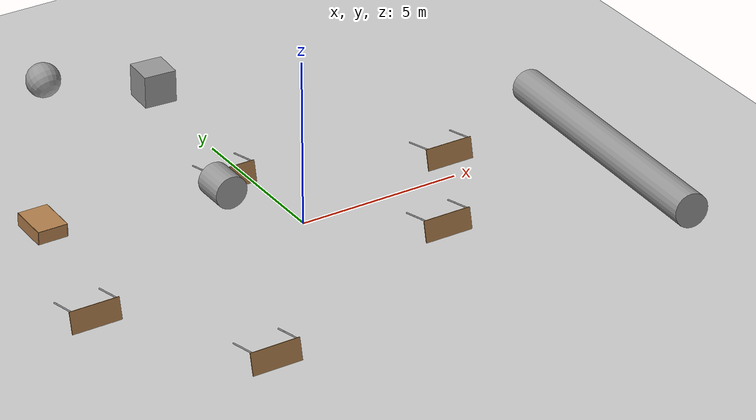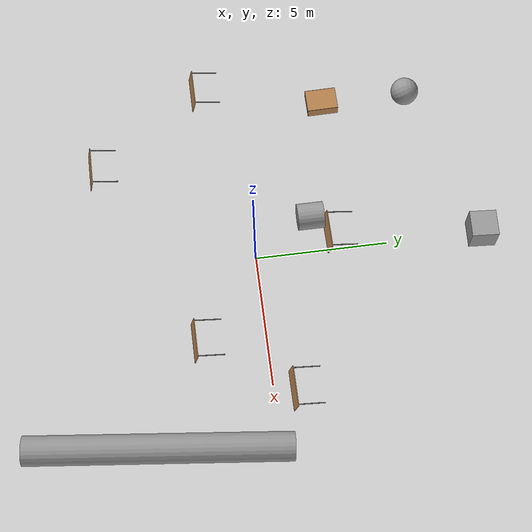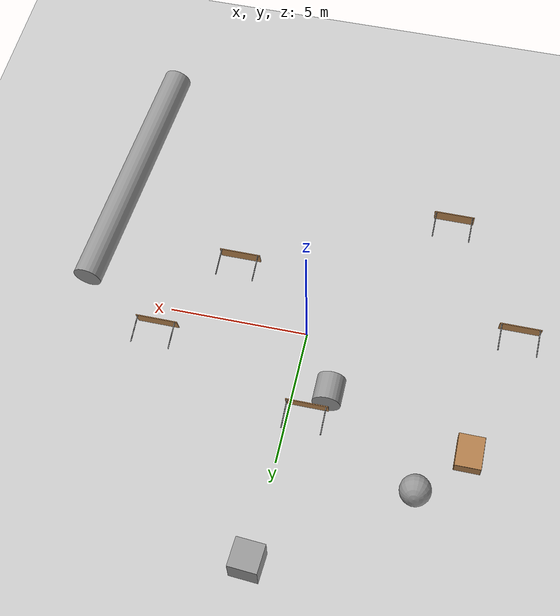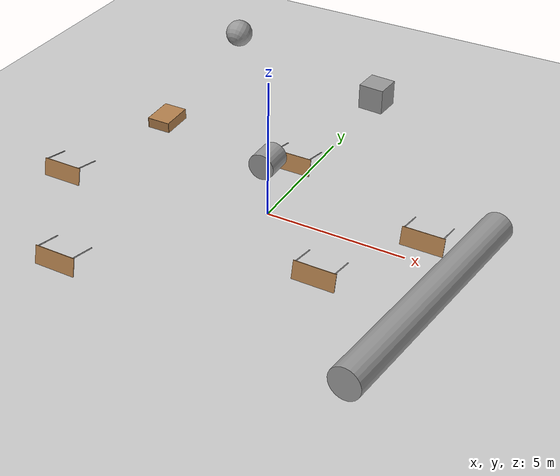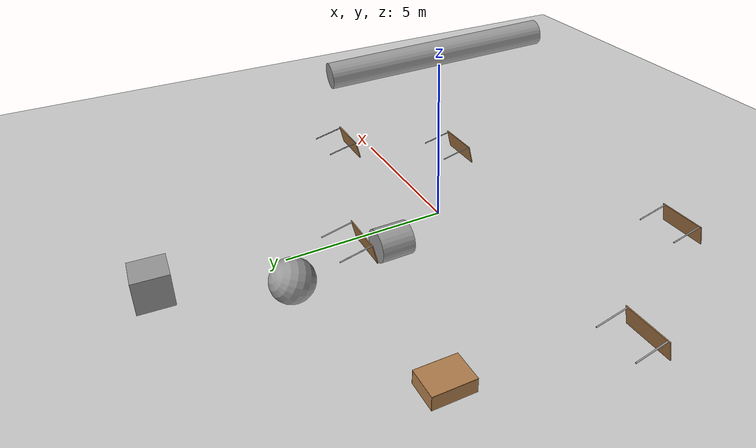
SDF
<sdf version="1.6">
 <world name="default">
  <light name="sun" type="directional">
   <pose>0 0 10 0 -0 0</pose>
   <diffuse>0.8 0.8 0.8 1</diffuse>
   <specular>0.1 0.1 0.1 1</specular>
   <attenuation>
    <range>1000</range>
    <constant>0.9</constant>
    <linear>0.01</linear>
    <quadratic>0.001</quadratic>
   </attenuation>
   <direction>-0.5 0.5 -1</direction>
  </light>
  <model name="ground_plane">
   <static>1</static>
   <link name="link">
    <collision name="collision">
     <geometry><plane><normal>0 0 1</normal><size>100 100</size></plane></geometry>
     <surface><friction><ode><mu>100</mu><mu2>50</mu2></ode></friction></surface>
    </collision>
    <visual name="visual">
     <cast_shadows>0</cast_shadows>
     <geometry><plane><normal>0 0 1</normal><size>100 100</size></plane></geometry>
     <material>
      <script><uri>file://media/materials/scripts/gazebo.material</uri><name>Gazebo/Grey</name></script>
     </material>
    </visual>
   </link>
  </model>
  <gravity>0 0 -9.8</gravity>
  <magnetic_field>6e-06 2.3e-05 -4.2e-05</magnetic_field>
  <atmosphere type="adiabatic"/>
  <physics name="default_physics" default="0" type="ode">
   <max_step_size>0.001</max_step_size>
   <real_time_factor>1</real_time_factor>
   <real_time_update_rate>1000</real_time_update_rate>
  </physics>
  <scene><ambient>0.4 0.4 0.4 1</ambient><background>0.7 0.7 0.7 1</background><shadows>1</shadows></scene>
  <spherical_coordinates>
   <surface_model>EARTH_WGS84</surface_model>
   <latitude_deg>0</latitude_deg>
   <longitude_deg>0</longitude_deg>
   <elevation>0</elevation>
   <heading_deg>0</heading_deg>
  </spherical_coordinates>
  <model name="bookshelf">
   <static>1</static>
   <link name="link">
    <inertial><mass>1</mass></inertial>
    <collision name="back">
     <pose>0 0.005 0.6 0 -0 0</pose>
     <geometry><box><size>0.9 0.01 1.2</size></box></geometry>
    </collision>
    <visual name="visual1">
     <pose>0 0.005 0.6 0 -0 0</pose>
     <geometry><box><size>0.9 0.01 1.2</size></box></geometry>
     <material>
      <script><uri>file://media/materials/scripts/gazebo.material</uri><name>Gazebo/Wood</name></script>
     </material>
    </visual>
    <collision name="left_side">
     <pose>0.45 -0.195 0.6 0 -0 0</pose>
     <geometry><box><size>0.02 0.4 1.2</size></box></geometry>
    </collision>
    <visual name="visual2">
     <pose>0.45 -0.195 0.6 0 -0 0</pose>
     <geometry><box><size>0.02 0.4 1.2</size></box></geometry>
     <material>
      <script><uri>file://media/materials/scripts/gazebo.material</uri><name>Gazebo/Wood</name></script>
     </material>
    </visual>
    <collision name="right_side">
     <pose>-0.45 -0.195 0.6 0 -0 0</pose>
     <geometry><box><size>0.02 0.4 1.2</size></box></geometry>
    </collision>
    <visual name="visual3">
     <pose>-0.45 -0.195 0.6 0 -0 0</pose>
     <geometry><box><size>0.02 0.4 1.2</size></box></geometry>
     <material>
      <script><uri>file://media/materials/scripts/gazebo.material</uri><name>Gazebo/Wood</name></script>
     </material>
    </visual>
    <collision name="bottom">
     <pose>0 -0.195 0.03 0 -0 0</pose>
     <geometry><box><size>0.88 0.4 0.06</size></box></geometry>
    </collision>
    <visual name="visual4">
     <pose>0 -0.195 0.03 0 -0 0</pose>
     <geometry><box><size>0.88 0.4 0.06</size></box></geometry>
     <material>
      <script><uri>file://media/materials/scripts/gazebo.material</uri><name>Gazebo/Wood</name></script>
     </material>
    </visual>
    <collision name="top">
     <pose>0 -0.195 1.19 0 -0 0</pose>
     <geometry><box><size>0.88 0.4 0.02</size></box></geometry>
    </collision>
    <visual name="visual5">
     <pose>0 -0.195 1.19 0 -0 0</pose>
     <geometry><box><size>0.88 0.4 0.02</size></box></geometry>
     <material>
      <script><uri>file://media/materials/scripts/gazebo.material</uri><name>Gazebo/Wood</name></script>
     </material>
    </visual>
    <collision name="low_shelf">
     <pose>0 -0.195 0.43 0 -0 0</pose>
     <geometry><box><size>0.88 0.4 0.02</size></box></geometry>
    </collision>
    <visual name="visual6">
     <pose>0 -0.195 0.43 0 -0 0</pose>
     <geometry><box><size>0.88 0.4 0.02</size></box></geometry>
     <material>
      <script><uri>file://media/materials/scripts/gazebo.material</uri><name>Gazebo/Wood</name></script>
     </material>
    </visual>
    <collision name="high_shelf">
     <pose>0 -0.195 0.8 0 -0 0</pose>
     <geometry><box><size>0.88 0.4 0.02</size></box></geometry>
    </collision>
    <visual name="visual7">
     <pose>0 -0.195 0.8 0 -0 0</pose>
     <geometry><box><size>0.88 0.4 0.02</size></box></geometry>
     <material>
      <script><uri>file://media/materials/scripts/gazebo.material</uri><name>Gazebo/Wood</name></script>
     </material>
    </visual>
   </link>
   <pose>-6.30564 4.00439 0.437463 1.60037 -0 0</pose>
  </model>
  <model name="unit_sphere_0">
   <pose>-4.69653 6.17486 3.02622 -0.995099 0.163163 0.114626</pose>
   <link name="link">
    <inertial>
     <mass>1</mass>
     <inertia><ixx>0.1</ixx><ixy>0</ixy><ixz>0</ixz><iyy>0.1</iyy><iyz>0</iyz><izz>0.1</izz></inertia>
    </inertial>
    <collision name="collision"><geometry><sphere><radius>0.499999</radius></sphere></geometry></collision>
    <visual name="visual">
     <geometry><sphere><radius>0.499999</radius></sphere></geometry>
     <material>
      <script><name>Gazebo/Grey</name><uri>file://media/materials/scripts/gazebo.material</uri></script>
     </material>
    </visual>
   </link>
  </model>
  <model name="unit_cylinder_0">
   <pose>-1.25988 2.23812 0.5 1.5708 -0.6722 -0.002922</pose>
   <link name="link">
    <inertial>
     <mass>1</mass>
     <inertia><ixx>0.145833</ixx><ixy>0</ixy><ixz>0</ixz><iyy>0.145833</iyy><iyz>0</iyz><izz>0.125</izz></inertia>
    </inertial>
    <collision name="collision">
     <geometry><cylinder><radius>0.5</radius><length>1</length></cylinder></geometry>
    </collision>
    <visual name="visual">
     <geometry><cylinder><radius>0.5</radius><length>1</length></cylinder></geometry>
     <material>
      <script><name>Gazebo/Grey</name><uri>file://media/materials/scripts/gazebo.material</uri></script>
     </material>
    </visual>
   </link>
  </model>
  <model name="unit_cylinder_0_clone_0">
   <pose>7.30075 -4.07955 2.20131 1.5117 -0.027325 -0.095147</pose>
   <link name="link">
    <inertial>
     <mass>1</mass>
     <inertia><ixx>0.145833</ixx><ixy>0</ixy><ixz>0</ixz><iyy>0.145833</iyy><iyz>0</iyz><izz>0.125</izz></inertia>
    </inertial>
    <collision name="collision">
     <geometry><cylinder><radius>0.5</radius><length>8.99478</length></cylinder></geometry>
    </collision>
    <visual name="visual">
     <geometry><cylinder><radius>0.5</radius><length>8.99478</length></cylinder></geometry>
     <material>
      <script><name>Gazebo/Grey</name><uri>file://media/materials/scripts/gazebo.material</uri></script>
     </material>
    </visual>
   </link>
  </model>
  <model name="unit_box_0">
   <pose>0.088022 8.58749 0.5 0 -0 -0.066336</pose>
   <link name="link">
    <inertial>
     <mass>1</mass>
     <inertia>
      <ixx>0.166667</ixx>
      <ixy>0</ixy>
      <ixz>0</ixz>
      <iyy>0.166667</iyy>
      <iyz>0</iyz>
      <izz>0.166667</izz>
     </inertia>
    </inertial>
    <collision name="collision"><geometry><box><size>1 1 1</size></box></geometry></collision>
    <visual name="visual">
     <geometry><box><size>1 1 1</size></box></geometry>
     <material>
      <script><name>Gazebo/Grey</name><uri>file://media/materials/scripts/gazebo.material</uri></script>
     </material>
    </visual>
   </link>
  </model>
  <audio><device>default</device></audio>
  <model name="table">
   <static>1</static>
   <link name="link">
    <collision name="surface">
     <pose>0 0 1 0 -0 0</pose>
     <geometry><box><size>1.5 0.8 0.03</size></box></geometry>
     <surface><friction><ode><mu>0.6</mu><mu2>0.6</mu2></ode></friction></surface>
    </collision>
    <visual name="visual1">
     <pose>0 0 1 0 -0 0</pose>
     <geometry><box><size>1.5 0.8 0.03</size></box></geometry>
     <material>
      <script><uri>file://media/materials/scripts/gazebo.material</uri><name>Gazebo/Wood</name></script>
     </material>
    </visual>
    <collision name="front_left_leg">
     <pose>0.68 0.38 0.5 0 -0 0</pose>
     <geometry><cylinder><radius>0.02</radius><length>1</length></cylinder></geometry>
    </collision>
    <visual name="front_left_leg">
     <pose>0.68 0.38 0.5 0 -0 0</pose>
     <geometry><cylinder><radius>0.02</radius><length>1</length></cylinder></geometry>
     <material>
      <script><uri>file://media/materials/scripts/gazebo.material</uri><name>Gazebo/Grey</name></script>
     </material>
    </visual>
    <collision name="front_right_leg">
     <pose>0.68 -0.38 0.5 0 -0 0</pose>
     <geometry><cylinder><radius>0.02</radius><length>1</length></cylinder></geometry>
    </collision>
    <visual name="front_right_leg">
     <pose>0.68 -0.38 0.5 0 -0 0</pose>
     <geometry><cylinder><radius>0.02</radius><length>1</length></cylinder></geometry>
     <material>
      <script><uri>file://media/materials/scripts/gazebo.material</uri><name>Gazebo/Grey</name></script>
     </material>
    </visual>
    <collision name="back_right_leg">
     <pose>-0.68 -0.38 0.5 0 -0 0</pose>
     <geometry><cylinder><radius>0.02</radius><length>1</length></cylinder></geometry>
    </collision>
    <visual name="back_right_leg">
     <pose>-0.68 -0.38 0.5 0 -0 0</pose>
     <geometry><cylinder><radius>0.02</radius><length>1</length></cylinder></geometry>
     <material>
      <script><uri>file://media/materials/scripts/gazebo.material</uri><name>Gazebo/Grey</name></script>
     </material>
    </visual>
    <collision name="back_left_leg">
     <pose>-0.68 0.38 0.5 0 -0 0</pose>
     <geometry><cylinder><radius>0.02</radius><length>1</length></cylinder></geometry>
    </collision>
    <visual name="back_left_leg">
     <pose>-0.68 0.38 0.5 0 -0 0</pose>
     <geometry><cylinder><radius>0.02</radius><length>1</length></cylinder></geometry>
     <material>
      <script><uri>file://media/materials/scripts/gazebo.material</uri><name>Gazebo/Grey</name></script>
     </material>
    </visual>
   </link>
   <pose>-7.40473 -0.694236 0 1.35426 -0 0</pose>
  </model>
  <model name="table_clone">
   <static>1</static>
   <link name="link">
    <collision name="surface">
     <pose>0 0 1 0 -0 0</pose>
     <geometry><box><size>1.5 0.8 0.03</size></box></geometry>
     <surface><friction><ode><mu>0.6</mu><mu2>0.6</mu2></ode></friction></surface>
    </collision>
    <visual name="visual1">
     <pose>0 0 1 0 -0 0</pose>
     <geometry><box><size>1.5 0.8 0.03</size></box></geometry>
     <material>
      <script><uri>file://media/materials/scripts/gazebo.material</uri><name>Gazebo/Wood</name></script>
     </material>
    </visual>
    <collision name="front_left_leg">
     <pose>0.68 0.38 0.5 0 -0 0</pose>
     <geometry><cylinder><radius>0.02</radius><length>1</length></cylinder></geometry>
    </collision>
    <visual name="front_left_leg">
     <pose>0.68 0.38 0.5 0 -0 0</pose>
     <geometry><cylinder><radius>0.02</radius><length>1</length></cylinder></geometry>
     <material>
      <script><uri>file://media/materials/scripts/gazebo.material</uri><name>Gazebo/Grey</name></script>
     </material>
    </visual>
    <collision name="front_right_leg">
     <pose>0.68 -0.38 0.5 0 -0 0</pose>
     <geometry><cylinder><radius>0.02</radius><length>1</length></cylinder></geometry>
    </collision>
    <visual name="front_right_leg">
     <pose>0.68 -0.38 0.5 0 -0 0</pose>
     <geometry><cylinder><radius>0.02</radius><length>1</length></cylinder></geometry>
     <material>
      <script><uri>file://media/materials/scripts/gazebo.material</uri><name>Gazebo/Grey</name></script>
     </material>
    </visual>
    <collision name="back_right_leg">
     <pose>-0.68 -0.38 0.5 0 -0 0</pose>
     <geometry><cylinder><radius>0.02</radius><length>1</length></cylinder></geometry>
    </collision>
    <visual name="back_right_leg">
     <pose>-0.68 -0.38 0.5 0 -0 0</pose>
     <geometry><cylinder><radius>0.02</radius><length>1</length></cylinder></geometry>
     <material>
      <script><uri>file://media/materials/scripts/gazebo.material</uri><name>Gazebo/Grey</name></script>
     </material>
    </visual>
    <collision name="back_left_leg">
     <pose>-0.68 0.38 0.5 0 -0 0</pose>
     <geometry><cylinder><radius>0.02</radius><length>1</length></cylinder></geometry>
    </collision>
    <visual name="back_left_leg">
     <pose>-0.68 0.38 0.5 0 -0 0</pose>
     <geometry><cylinder><radius>0.02</radius><length>1</length></cylinder></geometry>
     <material>
      <script><uri>file://media/materials/scripts/gazebo.material</uri><name>Gazebo/Grey</name></script>
     </material>
    </visual>
   </link>
   <pose>-4.40827 -4.96047 0 1.35426 -0 0</pose>
  </model>
  <model name="table_clone_0">
   <static>1</static>
   <link name="link">
    <collision name="surface">
     <pose>0 0 1 0 -0 0</pose>
     <geometry><box><size>1.5 0.8 0.03</size></box></geometry>
     <surface><friction><ode><mu>0.6</mu><mu2>0.6</mu2></ode></friction></surface>
    </collision>
    <visual name="visual1">
     <pose>0 0 1 0 -0 0</pose>
     <geometry><box><size>1.5 0.8 0.03</size></box></geometry>
     <material>
      <script><uri>file://media/materials/scripts/gazebo.material</uri><name>Gazebo/Wood</name></script>
     </material>
    </visual>
    <collision name="front_left_leg">
     <pose>0.68 0.38 0.5 0 -0 0</pose>
     <geometry><cylinder><radius>0.02</radius><length>1</length></cylinder></geometry>
    </collision>
    <visual name="front_left_leg">
     <pose>0.68 0.38 0.5 0 -0 0</pose>
     <geometry><cylinder><radius>0.02</radius><length>1</length></cylinder></geometry>
     <material>
      <script><uri>file://media/materials/scripts/gazebo.material</uri><name>Gazebo/Grey</name></script>
     </material>
    </visual>
    <collision name="front_right_leg">
     <pose>0.68 -0.38 0.5 0 -0 0</pose>
     <geometry><cylinder><radius>0.02</radius><length>1</length></cylinder></geometry>
    </collision>
    <visual name="front_right_leg">
     <pose>0.68 -0.38 0.5 0 -0 0</pose>
     <geometry><cylinder><radius>0.02</radius><length>1</length></cylinder></geometry>
     <material>
      <script><uri>file://media/materials/scripts/gazebo.material</uri><name>Gazebo/Grey</name></script>
     </material>
    </visual>
    <collision name="back_right_leg">
     <pose>-0.68 -0.38 0.5 0 -0 0</pose>
     <geometry><cylinder><radius>0.02</radius><length>1</length></cylinder></geometry>
    </collision>
    <visual name="back_right_leg">
     <pose>-0.68 -0.38 0.5 0 -0 0</pose>
     <geometry><cylinder><radius>0.02</radius><length>1</length></cylinder></geometry>
     <material>
      <script><uri>file://media/materials/scripts/gazebo.material</uri><name>Gazebo/Grey</name></script>
     </material>
    </visual>
    <collision name="back_left_leg">
     <pose>-0.68 0.38 0.5 0 -0 0</pose>
     <geometry><cylinder><radius>0.02</radius><length>1</length></cylinder></geometry>
    </collision>
    <visual name="back_left_leg">
     <pose>-0.68 0.38 0.5 0 -0 0</pose>
     <geometry><cylinder><radius>0.02</radius><length>1</length></cylinder></geometry>
     <material>
      <script><uri>file://media/materials/scripts/gazebo.material</uri><name>Gazebo/Grey</name></script>
     </material>
    </visual>
   </link>
   <pose>3.05972 -1.66046 0 1.35426 -0 0</pose>
  </model>
  <model name="table_clone_1">
   <static>1</static>
   <link name="link">
    <collision name="surface">
     <pose>0 0 1 0 -0 0</pose>
     <geometry><box><size>1.5 0.8 0.03</size></box></geometry>
     <surface><friction><ode><mu>0.6</mu><mu2>0.6</mu2></ode></friction></surface>
    </collision>
    <visual name="visual1">
     <pose>0 0 1 0 -0 0</pose>
     <geometry><box><size>1.5 0.8 0.03</size></box></geometry>
     <material>
      <script><uri>file://media/materials/scripts/gazebo.material</uri><name>Gazebo/Wood</name></script>
     </material>
    </visual>
    <collision name="front_left_leg">
     <pose>0.68 0.38 0.5 0 -0 0</pose>
     <geometry><cylinder><radius>0.02</radius><length>1</length></cylinder></geometry>
    </collision>
    <visual name="front_left_leg">
     <pose>0.68 0.38 0.5 0 -0 0</pose>
     <geometry><cylinder><radius>0.02</radius><length>1</length></cylinder></geometry>
     <material>
      <script><uri>file://media/materials/scripts/gazebo.material</uri><name>Gazebo/Grey</name></script>
     </material>
    </visual>
    <collision name="front_right_leg">
     <pose>0.68 -0.38 0.5 0 -0 0</pose>
     <geometry><cylinder><radius>0.02</radius><length>1</length></cylinder></geometry>
    </collision>
    <visual name="front_right_leg">
     <pose>0.68 -0.38 0.5 0 -0 0</pose>
     <geometry><cylinder><radius>0.02</radius><length>1</length></cylinder></geometry>
     <material>
      <script><uri>file://media/materials/scripts/gazebo.material</uri><name>Gazebo/Grey</name></script>
     </material>
    </visual>
    <collision name="back_right_leg">
     <pose>-0.68 -0.38 0.5 0 -0 0</pose>
     <geometry><cylinder><radius>0.02</radius><length>1</length></cylinder></geometry>
    </collision>
    <visual name="back_right_leg">
     <pose>-0.68 -0.38 0.5 0 -0 0</pose>
     <geometry><cylinder><radius>0.02</radius><length>1</length></cylinder></geometry>
     <material>
      <script><uri>file://media/materials/scripts/gazebo.material</uri><name>Gazebo/Grey</name></script>
     </material>
    </visual>
    <collision name="back_left_leg">
     <pose>-0.68 0.38 0.5 0 -0 0</pose>
     <geometry><cylinder><radius>0.02</radius><length>1</length></cylinder></geometry>
    </collision>
    <visual name="back_left_leg">
     <pose>-0.68 0.38 0.5 0 -0 0</pose>
     <geometry><cylinder><radius>0.02</radius><length>1</length></cylinder></geometry>
     <material>
      <script><uri>file://media/materials/scripts/gazebo.material</uri><name>Gazebo/Grey</name></script>
     </material>
    </visual>
   </link>
   <pose>5.29191 1.67132 0 1.35426 -0 0</pose>
  </model>
  <model name="table_clone_2">
   <static>1</static>
   <link name="link">
    <collision name="surface">
     <pose>0 0 1 0 -0 0</pose>
     <geometry><box><size>1.5 0.8 0.03</size></box></geometry>
     <surface><friction><ode><mu>0.6</mu><mu2>0.6</mu2></ode></friction></surface>
    </collision>
    <visual name="visual1">
     <pose>0 0 1 0 -0 0</pose>
     <geometry><box><size>1.5 0.8 0.03</size></box></geometry>
     <material>
      <script><uri>file://media/materials/scripts/gazebo.material</uri><name>Gazebo/Wood</name></script>
     </material>
    </visual>
    <collision name="front_left_leg">
     <pose>0.68 0.38 0.5 0 -0 0</pose>
     <geometry><cylinder><radius>0.02</radius><length>1</length></cylinder></geometry>
    </collision>
    <visual name="front_left_leg">
     <pose>0.68 0.38 0.5 0 -0 0</pose>
     <geometry><cylinder><radius>0.02</radius><length>1</length></cylinder></geometry>
     <material>
      <script><uri>file://media/materials/scripts/gazebo.material</uri><name>Gazebo/Grey</name></script>
     </material>
    </visual>
    <collision name="front_right_leg">
     <pose>0.68 -0.38 0.5 0 -0 0</pose>
     <geometry><cylinder><radius>0.02</radius><length>1</length></cylinder></geometry>
    </collision>
    <visual name="front_right_leg">
     <pose>0.68 -0.38 0.5 0 -0 0</pose>
     <geometry><cylinder><radius>0.02</radius><length>1</length></cylinder></geometry>
     <material>
      <script><uri>file://media/materials/scripts/gazebo.material</uri><name>Gazebo/Grey</name></script>
     </material>
    </visual>
    <collision name="back_right_leg">
     <pose>-0.68 -0.38 0.5 0 -0 0</pose>
     <geometry><cylinder><radius>0.02</radius><length>1</length></cylinder></geometry>
    </collision>
    <visual name="back_right_leg">
     <pose>-0.68 -0.38 0.5 0 -0 0</pose>
     <geometry><cylinder><radius>0.02</radius><length>1</length></cylinder></geometry>
     <material>
      <script><uri>file://media/materials/scripts/gazebo.material</uri><name>Gazebo/Grey</name></script>
     </material>
    </visual>
    <collision name="back_left_leg">
     <pose>-0.68 0.38 0.5 0 -0 0</pose>
     <geometry><cylinder><radius>0.02</radius><length>1</length></cylinder></geometry>
    </collision>
    <visual name="back_left_leg">
     <pose>-0.68 0.38 0.5 0 -0 0</pose>
     <geometry><cylinder><radius>0.02</radius><length>1</length></cylinder></geometry>
     <material>
      <script><uri>file://media/materials/scripts/gazebo.material</uri><name>Gazebo/Grey</name></script>
     </material>
    </visual>
   </link>
   <pose>-0.615882 3.77745 0 1.35426 -0 0</pose>
  </model>
 </world>
</sdf>
